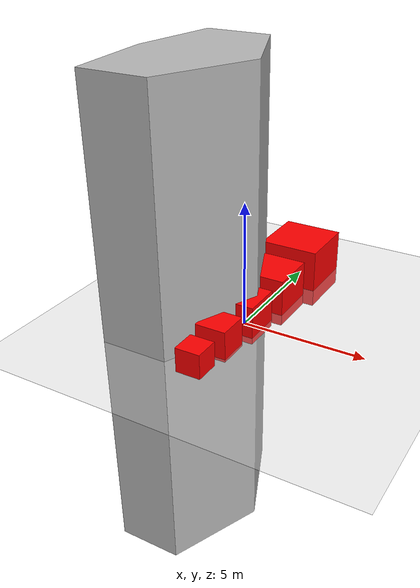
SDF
<sdf version='1.10'>
  <world name='shapes'>
    <scene>
      <ambient>1 1 1 1</ambient>
      <background>0.800000012 0.800000012 0.800000012 1</background>
      <shadows>true</shadows>
    </scene>
    <gravity>0 0 -9.8000000000000007</gravity>
    <magnetic_field>5.5644999999999998e-06 2.2875799999999999e-05 -4.2388400000000002e-05</magnetic_field>
    <atmosphere type='adiabatic'/>
    <physics type='ode'>
      <max_step_size>0.001</max_step_size>
      <real_time_factor>1</real_time_factor>
      <real_time_update_rate>1000</real_time_update_rate>
    </physics>
    <model name='ground_plane'>
      <static>true</static>
      <link name='link'>
        <collision name='collision'>
          <geometry>
            <plane>
              <normal>0 0 1</normal>
              <size>100 100</size>
            </plane>
          </geometry>
          <surface>
            <friction>
              <ode/>
            </friction>
            <bounce/>
            <contact/>
          </surface>
        </collision>
        <visual name='visual'>
          <geometry>
            <plane>
              <normal>0 0 1</normal>
              <size>100 100</size>
            </plane>
          </geometry>
          <material>
            <ambient>0.800000012 0.800000012 0.800000012 1</ambient>
            <diffuse>0.800000012 0.800000012 0.800000012 1</diffuse>
            <specular>0.800000012 0.800000012 0.800000012 1</specular>
          </material>
        </visual>
        <pose>0 0 0 0 0 0</pose>
        <inertial>
          <pose>0 0 0 0 0 0</pose>
          <mass>1</mass>
          <inertia>
            <ixx>1</ixx>
            <ixy>0</ixy>
            <ixz>0</ixz>
            <iyy>1</iyy>
            <iyz>0</iyz>
            <izz>1</izz>
          </inertia>
        </inertial>
        <enable_wind>false</enable_wind>
      </link>
      <pose>0 0 0 0 0 0</pose>
      <self_collide>false</self_collide>
    </model>
    <model name='box1'>
      <pose>0 -3.5312999999999999 0.5 0 0 0</pose>
      <link name='box_link'>
        <inertial>
          <inertia>
            <ixx>0.16666</ixx>
            <ixy>0</ixy>
            <ixz>0</ixz>
            <iyy>0.16666</iyy>
            <iyz>0</iyz>
            <izz>0.16666</izz>
          </inertia>
          <mass>1</mass>
          <pose>0 0 0 0 0 0</pose>
        </inertial>
        <collision name='box_collision'>
          <geometry>
            <box>
              <size>1 1 1</size>
            </box>
          </geometry>
          <surface>
            <friction>
              <ode/>
            </friction>
            <bounce/>
            <contact/>
          </surface>
        </collision>
        <visual name='box_visual'>
          <geometry>
            <box>
              <size>1 1 1</size>
            </box>
          </geometry>
          <material>
            <ambient>1 0 0 1</ambient>
            <diffuse>1 0 0 1</diffuse>
            <specular>1 0 0 1</specular>
          </material>
        </visual>
        <pose>0 0 0 0 0 0</pose>
        <enable_wind>false</enable_wind>
      </link>
      <static>false</static>
      <self_collide>false</self_collide>
    </model>
    <model name='box2'>
      <pose>0 -1.9063000000000001 0.5 0 0 0</pose>
      <link name='box_link'>
        <inertial>
          <inertia>
            <ixx>0.16666</ixx>
            <ixy>0</ixy>
            <ixz>0</ixz>
            <iyy>0.16666</iyy>
            <iyz>0</iyz>
            <izz>0.16666</izz>
          </inertia>
          <mass>1</mass>
          <pose>0 0 0 0 0 0</pose>
        </inertial>
        <collision name='box_collision'>
          <geometry>
            <box>
              <size>1.25 1.25 1.25</size>
            </box>
          </geometry>
          <surface>
            <friction>
              <ode/>
            </friction>
            <bounce/>
            <contact/>
          </surface>
        </collision>
        <visual name='box_visual'>
          <geometry>
            <box>
              <size>1.25 1.25 1.25</size>
            </box>
          </geometry>
          <material>
            <ambient>1 0 0 1</ambient>
            <diffuse>1 0 0 1</diffuse>
            <specular>1 0 0 1</specular>
          </material>
        </visual>
        <pose>0 0 0 0 0 0</pose>
        <enable_wind>false</enable_wind>
      </link>
      <static>false</static>
      <self_collide>false</self_collide>
    </model>
    <model name='box3'>
      <pose>0 0 0.5 0 0 0</pose>
      <link name='box_link'>
        <inertial>
          <inertia>
            <ixx>0.16666</ixx>
            <ixy>0</ixy>
            <ixz>0</ixz>
            <iyy>0.16666</iyy>
            <iyz>0</iyz>
            <izz>0.16666</izz>
          </inertia>
          <mass>1</mass>
          <pose>0 0 0 0 0 0</pose>
        </inertial>
        <collision name='box_collision'>
          <geometry>
            <box>
              <size>1.5626 1.5625 1.5625</size>
            </box>
          </geometry>
          <surface>
            <friction>
              <ode/>
            </friction>
            <bounce/>
            <contact/>
          </surface>
        </collision>
        <visual name='box_visual'>
          <geometry>
            <box>
              <size>1.5626 1.5625 1.5625</size>
            </box>
          </geometry>
          <material>
            <ambient>1 0 0 1</ambient>
            <diffuse>1 0 0 1</diffuse>
            <specular>1 0 0 1</specular>
          </material>
        </visual>
        <pose>0 0 0 0 0 0</pose>
        <enable_wind>false</enable_wind>
      </link>
      <static>false</static>
      <self_collide>false</self_collide>
    </model>
    <model name='box4'>
      <pose>0 2.2578624999999999 0.5 0 0 0</pose>
      <link name='box_link'>
        <inertial>
          <inertia>
            <ixx>0.16666</ixx>
            <ixy>0</ixy>
            <ixz>0</ixz>
            <iyy>0.16666</iyy>
            <iyz>0</iyz>
            <izz>0.16666</izz>
          </inertia>
          <mass>1</mass>
          <pose>0 0 0 0 0 0</pose>
        </inertial>
        <collision name='box_collision'>
          <geometry>
            <box>
              <size>1.953125 1.953125 1.953125</size>
            </box>
          </geometry>
          <surface>
            <friction>
              <ode/>
            </friction>
            <bounce/>
            <contact/>
          </surface>
        </collision>
        <visual name='box_visual'>
          <geometry>
            <box>
              <size>1.953125 1.953125 1.953125</size>
            </box>
          </geometry>
          <material>
            <ambient>1 0 0 1</ambient>
            <diffuse>1 0 0 1</diffuse>
            <specular>1 0 0 1</specular>
          </material>
        </visual>
        <pose>0 0 0 0 0 0</pose>
        <enable_wind>false</enable_wind>
      </link>
      <static>false</static>
      <self_collide>false</self_collide>
    </model>
    <model name='box5'>
      <pose>0 4.9551281249999999 0.5 0 0 0</pose>
      <link name='box_link'>
        <inertial>
          <inertia>
            <ixx>0.16666</ixx>
            <ixy>0</ixy>
            <ixz>0</ixz>
            <iyy>0.16666</iyy>
            <iyz>0</iyz>
            <izz>0.16666</izz>
          </inertia>
          <mass>1</mass>
          <pose>0 0 0 0 0 0</pose>
        </inertial>
        <collision name='box_collision'>
          <geometry>
            <box>
              <size>2.44140625 2.44140625 2.44140625</size>
            </box>
          </geometry>
          <surface>
            <friction>
              <ode/>
            </friction>
            <bounce/>
            <contact/>
          </surface>
        </collision>
        <visual name='box_visual'>
          <geometry>
            <box>
              <size>2.44140625 2.44140625 2.44140625</size>
            </box>
          </geometry>
          <material>
            <ambient>1 0 0 1</ambient>
            <diffuse>1 0 0 1</diffuse>
            <specular>1 0 0 1</specular>
          </material>
        </visual>
        <pose>0 0 0 0 0 0</pose>
        <enable_wind>false</enable_wind>
      </link>
      <static>false</static>
      <self_collide>false</self_collide>
    </model>
    <model name='octopus piece'>
      <link name='link'>
        <visual name='visual'>
          <geometry>
            <mesh>
              <uri>file:///workspaces/TAKOS/src/base segment small.stl</uri>
              <scale>1 1 1</scale>
            </mesh>
          </geometry>
        </visual>
        <collision name='collision'>
          <geometry>
            <mesh>
              <uri>file:///workspaces/TAKOS/src/base segment small.stl</uri>
            </mesh>
          </geometry>
        </collision>
        <pose>0 0 0 0 0 0</pose>
        <inertial>
          <pose>0 0 0 0 0 0</pose>
          <mass>1</mass>
          <inertia>
            <ixx>1</ixx>
            <ixy>0</ixy>
            <ixz>0</ixz>
            <iyy>1</iyy>
            <iyz>0</iyz>
            <izz>1</izz>
          </inertia>
        </inertial>
        <enable_wind>false</enable_wind>
      </link>
      <pose>-4.3918886845402429 0.16974324723755452 0 0 0 0</pose>
      <static>false</static>
      <self_collide>false</self_collide>
    </model>
    <light name='sun' type='directional'>
      <pose>0 0 10 0 0 0</pose>
      <cast_shadows>true</cast_shadows>
      <intensity>1</intensity>
      <direction>-0.5 0.10000000000000001 -0.90000000000000002</direction>
      <diffuse>0.800000012 0.800000012 0.800000012 1</diffuse>
      <specular>0.200000003 0.200000003 0.200000003 1</specular>
      <attenuation>
        <range>1000</range>
        <linear>0.01</linear>
        <constant>0.90000000000000002</constant>
        <quadratic>0.001</quadratic>
      </attenuation>
      <spot>
        <inner_angle>0</inner_angle>
        <outer_angle>0</outer_angle>
        <falloff>0</falloff>
      </spot>
    </light>
  </world>
</sdf>
